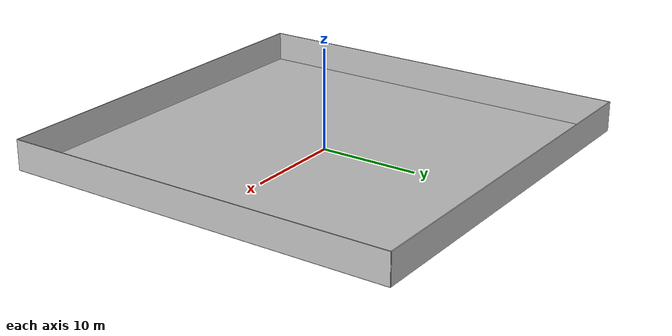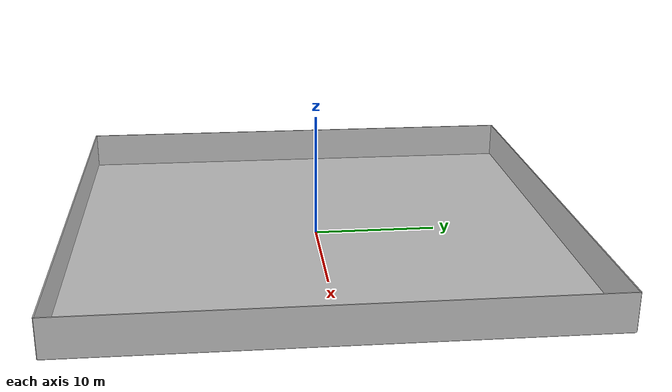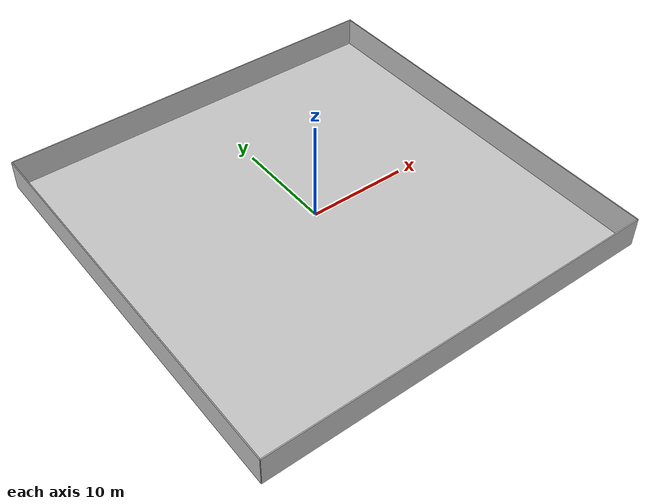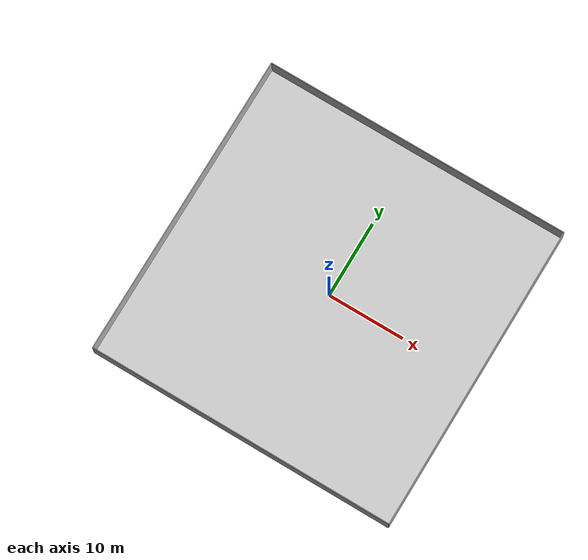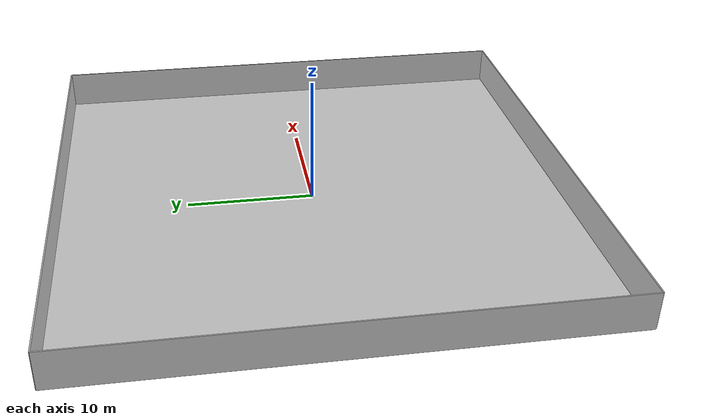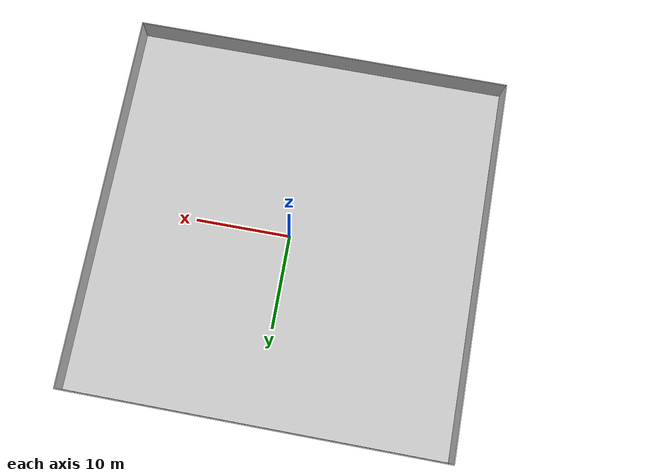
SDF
<sdf version="1.5">
 <world name="iarc">
  <scene><include><uri>model://sun</uri></include><sky><clouds><speed>12</speed></clouds></sky></scene>
  <physics type="ode">
   <max_step_size>0.001</max_step_size>
   <real_time_update_rate>1000</real_time_update_rate>
   <gravity>0 0 -9.8</gravity>
   <ode>
    <solver><type>quick</type><iters>100</iters><sor>1.3</sor></solver>
    <constraints>
     <cfm>0</cfm>
     <erp>1</erp>
     <contact_max_correcting_vel>0</contact_max_correcting_vel>
     <contact_surface_layer>0</contact_surface_layer>
    </constraints>
   </ode>
  </physics>
  <include><uri>model://iarc_sim_3d/models/floor</uri></include>
  <model name="wall_l">
   <pose>-20 0 1.5 0 0 0</pose>
   <static>1</static>
   <link name="link">
    <visual name="visual"><geometry><box><size>0.1 40 3</size></box></geometry></visual>
    <collision name="collision"><geometry><box><size>0.1 40 3</size></box></geometry></collision>
   </link>
  </model>
  <model name="wall_r">
   <pose>20 0 1.5 0 0 0</pose>
   <static>1</static>
   <link name="link">
    <visual name="visual"><geometry><box><size>0.1 40 3</size></box></geometry></visual>
    <collision name="collision"><geometry><box><size>0.1 40 3</size></box></geometry></collision>
   </link>
  </model>
  <model name="wall_b">
   <pose>0 -20 1.5 0 0 0</pose>
   <static>1</static>
   <link name="link">
    <visual name="visual"><geometry><box><size>40 0.1 3</size></box></geometry></visual>
    <collision name="collision"><geometry><box><size>40 0.1 3</size></box></geometry></collision>
   </link>
  </model>
  <model name="wall_f">
   <pose>0 20 1.5 0 0 0</pose>
   <static>1</static>
   <link name="link">
    <visual name="visual"><geometry><box><size>40 0.1 3</size></box></geometry></visual>
    <collision name="collision"><geometry><box><size>40 0.1 3</size></box></geometry></collision>
   </link>
  </model>
  <light type="directional" name="global_light">
   <pose>0 0 10 0 -0 0</pose>
   <diffuse>0.9 0.9 0.9 1</diffuse>
   <specular>0.1 0.1 0.1 1</specular>
   <attenuation>
    <range>1000</range>
    <constant>0.9</constant>
    <linear>0.01</linear>
    <quadratic>0.001</quadratic>
   </attenuation>
   <direction>-0.5 0.1 -0.9</direction>
  </light>
 </world>
</sdf>

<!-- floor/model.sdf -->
<sdf version="1.4">
    <model name="IARCFloor">
        <static>true</static>
        <link name="link">
            <collision name="collision">
                <geometry>
                    <plane>
                        <normal>0 0 1</normal>
                        <size>40 40</size>
                    </plane>
                </geometry>
                <surface>
                    <friction>
                        <ode>
                            <mu>100.0</mu>
                            <mu2>50.0</mu2>
                            <fdir1>0 0 0</fdir1>
                            <slip1>0</slip1>
                            <slip2>0</slip2>
                        </ode>
                    </friction>
                    <bounce/>
                    <contact>
                        <ode>
                            <soft_cfm>0</soft_cfm>
                            <soft_erp>0.2</soft_erp>
                            <kp>1e10</kp>
                            <kd>1</kd>
                            <max_vel>100.0</max_vel>
                            <min_depth>0.0001</min_depth>
                        </ode>
                    </contact>
                </surface>
            </collision>

            <visual name="visual">
                <cast_shadows>0</cast_shadows>
                <geometry>
                    <plane>
                        <normal>0 0 1</normal>
                        <size>40 40</size>
                    </plane>
                </geometry>
                <material>
                    <script>
                        <uri>file://media/materials/scripts/iarc.material</uri>
                        <name>IARC/Floor1</name>
                    </script>
                </material>
            </visual>
        </link>
    </model>
</sdf>
